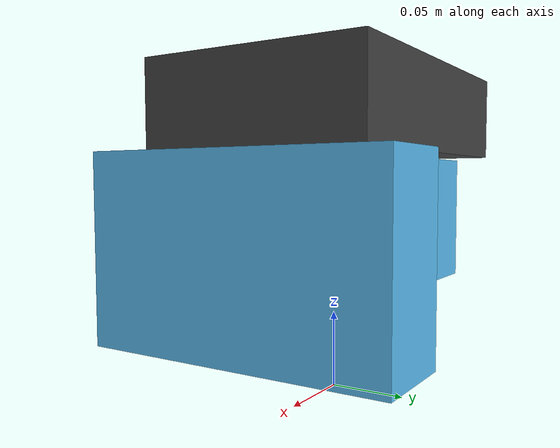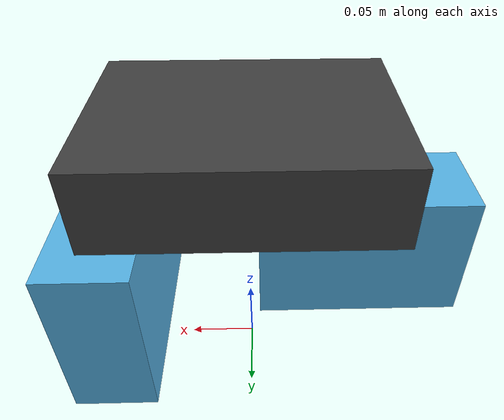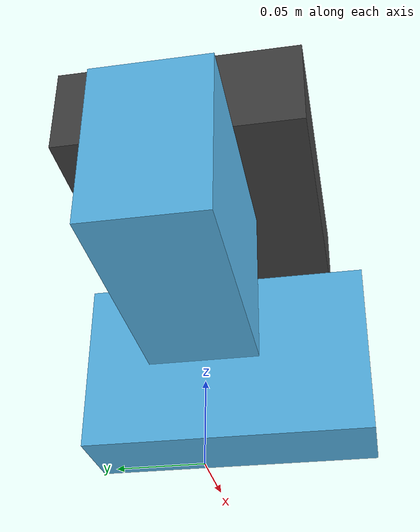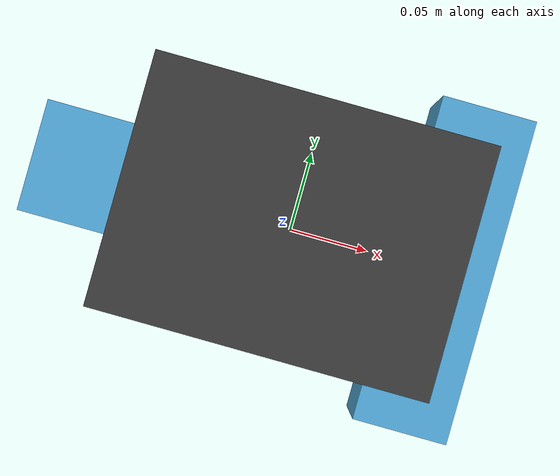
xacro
<?xml version="1.0"?>
<robot name="base" xmlns:xacro="http://www.ros.org/wiki/xacro">

    <xacro:property name="base_length" value="0.3"/>
    <xacro:property name="base_width" value="0.2"/>
    <xacro:property name="base_height" value="0.15"/>
    <xacro:property name="base_mass" value="4.0"/>
    <xacro:property name="base_color" value="0.25 0.25 0.25 1"/>

    <material name="base_material">
        <color rgba="${base_color}"/>
    </material>

    <link name="base_footprint"/>
    <link name="base_link">
        <visual>
            <origin xyz="0 0 0"/>
            <geometry>
                <box size="0.195 0.145 0.055"/>
            </geometry>
            <material name="base_material"/>
        </visual>
        <collision>
            <origin xyz="0 0 0"/>
            <geometry>
                <box size="0.19 0.145 0.055"/>
            </geometry>
        </collision>

        <inertial>
            <origin xyz="0 0 0"/>
            <mass value="${base_mass}"/>
            <inertia
                ixx="${(1/12) * base_mass * (base_width**2 + base_height**2)}"
                ixy="0" ixz="0"
                iyy="${(1/12) * base_mass * (base_length**2 + base_height**2)}"
                iyz="0"
                izz="${(1/12) * base_mass * (base_length**2 + base_width**2)}"/>
        </inertial>

        <visual>
            <origin xyz="-0.08 0 -0.075"/>
            <geometry>
                <box size="0.145 0.065 0.095"/>
            </geometry>
        </visual>
        <collision>
            <origin xyz="-0.08 0 -0.075"/>
            <geometry>
                <box size="0.145 0.065 0.095"/>
            </geometry>
        </collision>

        <visual>
            <origin xyz="0.09 0 -0.085"/>
            <geometry>
                <box size="0.055 0.19 0.115"/>
            </geometry>
        </visual>
        <collision>
            <origin xyz="0.09 0 -0.085"/>
            <geometry>
                <box size="0.055 0.19 0.115"/>
            </geometry>
        </collision>
    </link>

    <joint name="base_joint" type="fixed">
        <parent link="base_footprint"/>
        <child link="base_link"/>
        <origin xyz="0 0 0.1825"/>
    </joint>

</robot>
